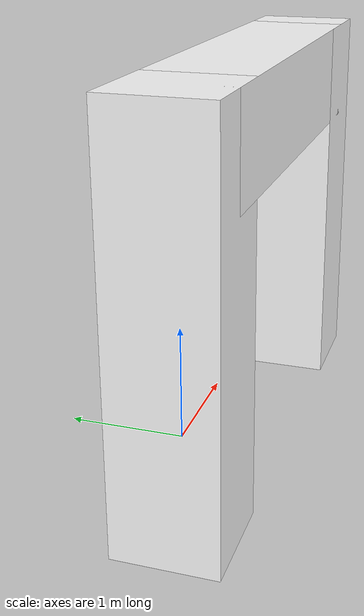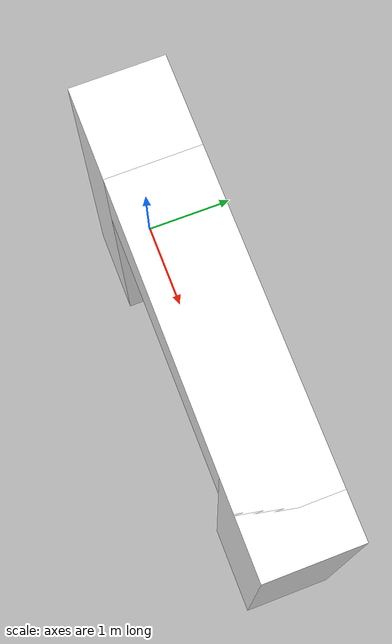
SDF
<?xml version="1.0"?>
<sdf version="1.6">
  <model name="Color Tutorial Model">
    <static>true</static>
    <link name="robot_link">

      <visual name="body_visual">
        <pose>0 0 1 0 1.57079 0</pose>
        <geometry>
          <box>
            <size>4 1 1</size>
          </box>
        </geometry>
        <material>
          <ambient>0 0 0 1</ambient>
          <diffuse>1 1 1 1</diffuse>
          <specular>0 1 1 1</specular>
          <emissive>1 0 0 0</emissive>
        </material>
      </visual>

      <collision name="body_collision">
        <pose>0 0 1 0 1.57079 0</pose>
        <geometry>
          <box>
            <size>4 1 1</size>
          </box>
        </geometry>
      </collision>

      <visual name="foot1_visual">
        <pose relative_to="body_visual">2 0 2.5 0 0 0</pose>
        <geometry>
          <box>
            <size>4 1 1</size>
          </box>
        </geometry>
        <material>
          <ambient>0 0 0 1</ambient>
          <diffuse>1 1 1 1</diffuse>
          <specular>0 1 1 1</specular>
          <emissive>1 0 0 0</emissive>
        </material>
      </visual>

      <collision name="foot1_collision">
        <pose relative_to="body_visual">2 0 2.5 0 0 0</pose>
        <geometry>
          <box>
            <size>4 1 1</size>
          </box>
        </geometry>
      </collision>

      <visual name="foot2_visual">
        <pose relative_to="body_visual">4 0 1 0 1.57079 0</pose>
        <geometry>
          <box>
            <size>4 1 1</size>
          </box>
        </geometry>
        <material>
          <ambient>0 0 0 1</ambient>
          <diffuse>1 1 1 1</diffuse>
          <specular>0 1 1 1</specular>
          <emissive>1 0 0 0</emissive>
        </material>
      </visual>

      <collision name="foot2_collision">
        <pose relative_to="body_visual">4 0 1 0 1.57079 0</pose>
        <geometry>
          <box>
            <size>4 1 1</size>
          </box>
        </geometry>
      </collision>

    </link>
  </model>
</sdf>
